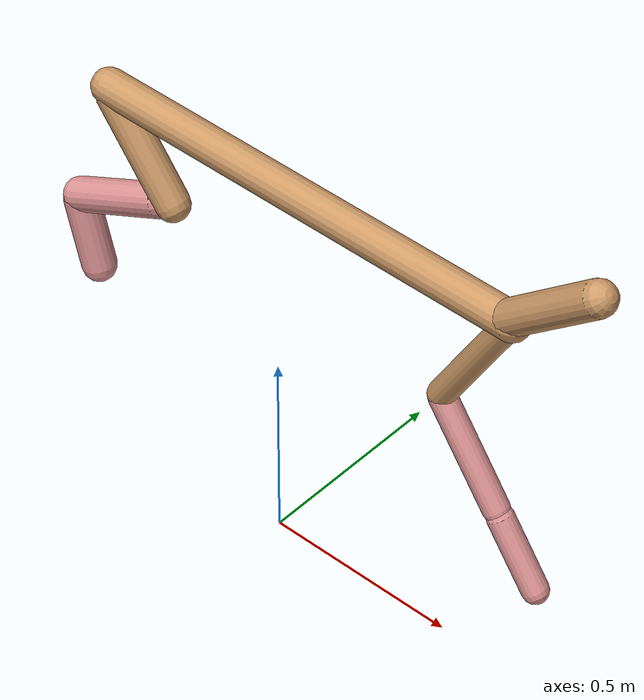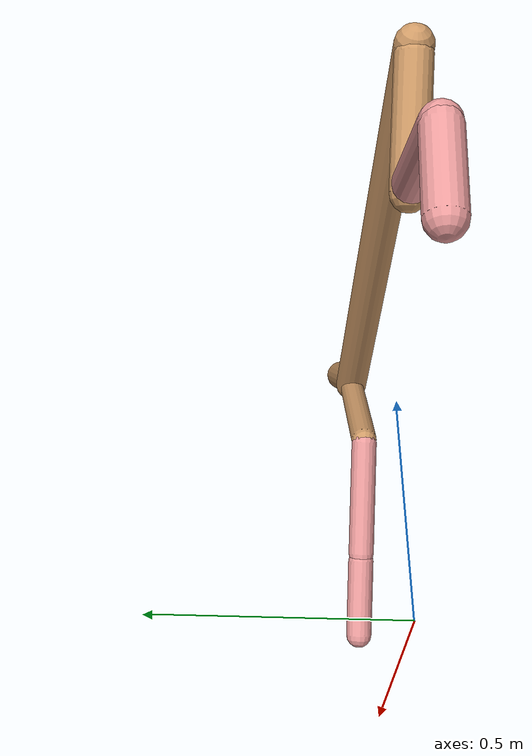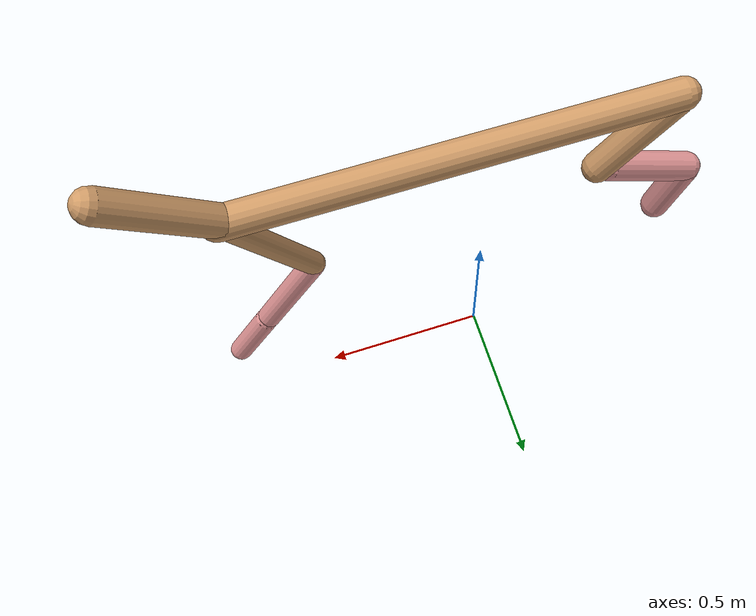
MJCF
<mujoco model="cheetah">
  <compiler angle="radian" coordinate="local" inertiafromgeom="true" settotalmass="14" />
  <default>
    <joint armature=".1" damping=".01" limited="true" solimplimit="0 .8 .03" solreflimit=".02 1" stiffness="8" />
    <geom conaffinity="0" condim="3" contype="1" friction="0.8 .1 .1" rgba="0.8 0.6 .4 1" solimp="0.0 0.8 0.01" solref="0.02 1" />
    <motor ctrllimited="true" ctrlrange="-1 1" />
  </default>
  <size nstack="300000" nuser_geom="1" />
  <option gravity="0 0 -9.81" timestep="0.01" />
  <worldbody>
    <body name="torso" pos="0.0 0.0 1.038771407351459">
      <joint armature="0" axis="1 0 0" damping="0" limited="false" name="ignorex" pos="0 0 0" stiffness="0" type="slide" />
      <joint armature="0" axis="0 0 1" damping="0" limited="false" name="ignorez" pos="0 0 0" stiffness="0" type="slide" />
      <joint armature="0" axis="0 1 0" damping="0" limited="false" name="ignorey" pos="0 0 0" stiffness="0" type="hinge" />
      <geom fromto="-0.5 0.0 0.0 0.6596165653570976 0.0 0.0" name="torso" size="0.0431391332236888" type="capsule" />
      <geom axisangle="0 1 0 .87" name="head" pos="0.7596165653570975 0.0 0.1" size="0.04222860528879999 0.15" type="capsule" />

      <body name="bthigh" pos="-.5 0 0">
        <joint axis="0 1 0" damping="6" name="bthigh" pos="0 0 0" range="-.52 1.05" stiffness="240" type="hinge" />
        <geom axisangle="0 1 0 -3.8" name="bthigh" pos="0.09790419117450157 0.0 -0.12727544852685205" size="0.04206159400179608 0.1415626179492425" type="capsule" />
        <body name="bshin" pos="0.15580838234900313 0.0 -0.24455089705370406">
          <joint axis="0 1 0" damping="4.5" name="bshin" pos="0 0 0" range="-.785 .785" stiffness="180" type="hinge" />
          <geom axisangle="0 1 0 -2.03" name="bshin" pos="-0.13681949520132494 0.0 -0.06840974760066247" rgba="0.9 0.6 0.6 1" size="0.04206159400179608 0.14644408753369914" type="capsule" />
          <body name="bfoot" pos="-0.2736389904026499 0.0 -0.13681949520132494">
            <joint axis="0 1 0" damping="3" name="bfoot" pos="0 0 0" range="-.4 .785" stiffness="120" type="hinge" />
            <geom axisangle="0 1 0 -.27" name="bfoot" pos="0.029341583598077425 0.0 -0.09487112030045035" rgba="0.9 0.6 0.6 1" size="0.04206159400179608 0.0917716281877848" type="capsule" />
            <inertial mass="10" />
          </body>
        </body>
      </body>
      <body name="fthigh" pos="0.6596165653570976 0.0 0.0">
        <joint axis="0 1 0" damping="4.5" name="fthigh" pos="0 0 0" range="-1.5 0.8" stiffness="180" type="hinge" />
        <geom axisangle="0 1 0 .52" name="fthigh" pos="-0.09374760860520455 0.0 -0.16071018618035063" size="0.0322 0.1801303317758829" type="capsule" />
        <body name="fshin" pos="-0.1874952172104091 0.0 -0.32142037236070126">
          <joint axis="0 1 0" damping="3" name="fshin" pos="0 0 0" range="-1.2 1.1" stiffness="120" type="hinge" />
          <geom axisangle="0 1 0 -.6" name="fshin" pos="0.08699250067487958 0.0 -0.12045115478060249" rgba="0.9 0.6 0.6 1" size="0.0322 0.14356252006198184" type="capsule" />
          <body name="ffoot" pos="0.17398500134975917 0.0 -0.24090230956120498">
            <joint axis="0 1 0" damping="1.5" name="ffoot" pos="0 0 0" range="-3.1 -0.3" stiffness="60" type="hinge" />
            <geom axisangle="0 1 0 -.6" name="ffoot" pos="0.05841372878364867 0.0 -0.09086580033012018" rgba="0.9 0.6 0.6 1" size="0.0322 0.09480543777678047" type="capsule" />
            <inertial mass="10" />
          </body>
        </body>
      </body>
    </body>
  </worldbody>
  <actuator>
    <motor gear="120" joint="bthigh" name="bthigh" />
    <motor gear="90" joint="bshin" name="bshin" />
    <motor gear="60" joint="bfoot" name="bfoot" />
    <motor gear="120" joint="fthigh" name="fthigh" />
    <motor gear="60" joint="fshin" name="fshin" />
    <motor gear="30" joint="ffoot" name="ffoot" />
  </actuator>
</mujoco>
